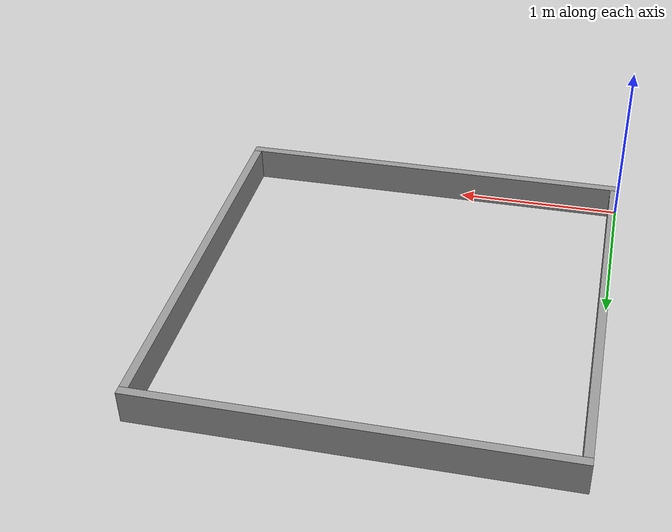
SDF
<?xml version='1.0'?>
<sdf version='1.6'>
  <model name='arenawalls'>
    <pose frame=''>1.2 1.2 0 0 -0 0</pose>
    <link name='Wall_0'>
      <collision name='Wall_0_Collision'>
        <geometry>
          <box>
            <size>2.4 0.05 0.2</size>
          </box>
        </geometry>
        <pose frame=''>0 0 0.1 0 -0 0</pose>
      </collision>
      <visual name='Wall_0_Visual'>
        <pose frame=''>0 0 0.1 0 -0 0</pose>
        <geometry>
          <box>
            <size>2.4 0.05 0.2</size>
          </box>
        </geometry>
        <material>
          <script>
            <uri>file://media/materials/scripts/gazebo.material</uri>
            <name>Gazebo/Grey</name>
          </script>
          <ambient>0 0 0 1</ambient>
        </material>
      </visual>
      <pose frame=''>0 -1.175 0 0 -0 0</pose>
    </link>
    <link name='Wall_2'>
      <collision name='Wall_2_Collision'>
        <geometry>
          <box>
            <size>2.4 0.05 0.2</size>
          </box>
        </geometry>
        <pose frame=''>0 0 0.1 0 -0 0</pose>
      </collision>
      <visual name='Wall_2_Visual'>
        <pose frame=''>0 0 0.1 0 -0 0</pose>
        <geometry>
          <box>
            <size>2.4 0.05 0.2</size>
          </box>
        </geometry>
        <material>
          <script>
            <uri>file://media/materials/scripts/gazebo.material</uri>
            <name>Gazebo/Grey</name>
          </script>
          <ambient>0 0 0 1</ambient>
        </material>
      </visual>
      <pose frame=''>0 1.175 0 0 -0 0</pose>
    </link>
    <link name='Wall_4'>
      <collision name='Wall_4_Collision'>
        <geometry>
          <box>
            <size>2.3 0.05 0.2</size>
          </box>
        </geometry>
        <pose frame=''>0 0 0.1 0 -0 0</pose>
      </collision>
      <visual name='Wall_4_Visual'>
        <pose frame=''>0 0 0.1 0 -0 0</pose>
        <geometry>
          <box>
            <size>2.3 0.05 0.2</size>
          </box>
        </geometry>
        <material>
          <script>
            <uri>file://media/materials/scripts/gazebo.material</uri>
            <name>Gazebo/Grey</name>
          </script>
          <ambient>0 0 0 1</ambient>
        </material>
      </visual>
      <pose frame=''>-1.175 0 0 0 -0 1.5708</pose>
    </link>
    <link name='Wall_6'>
      <collision name='Wall_6_Collision'>
        <geometry>
          <box>
            <size>2.3 0.05 0.2</size>
          </box>
        </geometry>
        <pose frame=''>0 0 0.1 0 -0 0</pose>
      </collision>
      <visual name='Wall_6_Visual'>
        <pose frame=''>0 0 0.1 0 -0 0</pose>
        <geometry>
          <box>
            <size>2.3 0.05 0.2</size>
          </box>
        </geometry>
        <material>
          <script>
            <uri>file://media/materials/scripts/gazebo.material</uri>
            <name>Gazebo/Grey</name>
          </script>
          <ambient>0 0 0 1</ambient>
        </material>
      </visual>
      <pose frame=''>1.175 0 0 0 -0 1.5708</pose>
    </link>
    <static>1</static>
  </model>
</sdf>
